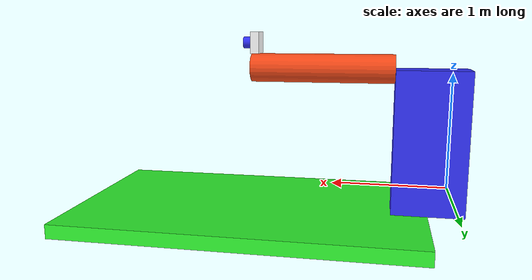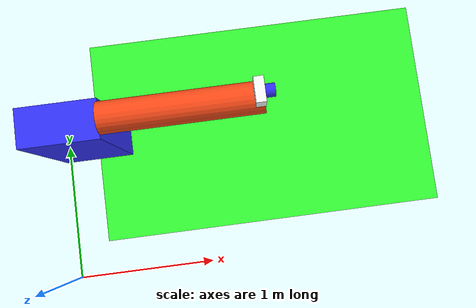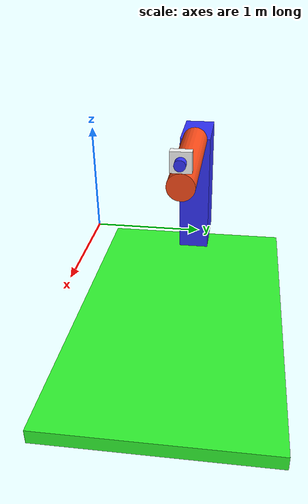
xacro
<?xml version="1.0"?>
<robot xmlns:xacro="http://www.ros.org/wiki/xacro"  name="robot">

    <xacro:include filename="example_include_assignment_aloukeri.xacro" />

    <link name="world"></link>

    <joint name="base_joint" type="fixed">
        <origin xyz="1.5 1.0 0" rpy="0 0 0"/>
        <parent link="world"/>
        <child link="base_link"/>
    </joint>

    <link name="base_link">
        <visual>
            <origin xyz="0 0 0.05" rpy="0 0 0"/>
            <geometry>
                <box size="2.5 1.5 0.1" />
            </geometry>
            <material name="green">
                <color rgba="0.2 1 0.2 1"/>
            </material>
        </visual>
        <collision>
            <origin xyz="0 0 0.05" rpy="0 0 0"/>
            <geometry>
                <box size="2.5 1.5 0.1" />
            </geometry>
        </collision>
        <inertial>
            <origin xyz="0 0 0.05" rpy="0 0 0"/>
            <mass value="12" />
            <inertia ixx="2.26" ixy="0.0" ixz="0.0" iyy="6.26" iyz="0.0" izz="8.5" />
        </inertial>
    </link>

    <link name="slider_x_link">
        <inertial>
            <origin xyz="0 0 0" rpy="0 0 0"/>
            <mass value="0.01"/>
            <inertia ixx="0.001" ixy="0" ixz="0" iyy="0.001" iyz="0" izz="0.001"/>
        </inertial>
    </link>

    <joint name="slider_x_joint" type="prismatic">
        <origin xyz="-1.25 0 0.1" rpy="0 0 0"/>
        <parent link="base_link"/>
        <child link="slider_x_link"/>
        <axis xyz="1 0 0"/>
        <limit lower="0" upper="2" velocity="100" effort="100"/>
    </joint>

    <joint name="slider_y_joint" type="prismatic">
        <origin xyz="0 0 0" rpy="0 0 0"/>
        <parent link="slider_x_link"/>
        <child link="slider_link"/>
        <axis xyz="0 1 0"/>
        <limit lower="-0.6" upper="0.6" velocity="100" effort="100"/>
    </joint>

    <link name="slider_link">
        <visual>
            <origin xyz="0 0 0.5" rpy="0 0 0"/>
            <geometry>
                <box size="0.5 0.25 1.0" />
            </geometry>
            <material name="blue" />
        </visual>
        <collision>
            <origin xyz="0 0 0.5" rpy="0 0 0"/>
            <geometry>
                <box size="0.5 0.25 1.0" />
            </geometry>
        </collision>
        <xacro:inertial_box mass="0.5" x="0.5" y="0.25" z="1.0">
            <origin xyz="0 0 0.5" rpy="0 0 0"/>
        </xacro:inertial_box>
    </link>

    <joint name="arm_joint" type="revolute">
        <origin xyz="0.25 0 1.0" rpy="0 0 0"/>
        <parent link="slider_link"/>
        <child link="arm_link"/>
        <axis xyz="0 -1 0"/>
        <limit lower="-${pi/2}" upper="0" velocity="100" effort="100"/>
    </joint>

    <xacro:property name="arm_length" value="1" />
    <xacro:property name="arm_radius" value="0.1" />

    <link name="arm_link">
        <visual>
            <origin xyz="${arm_length/2} 0 0" rpy="0 ${pi/2} 0"/>
            <geometry>
                <cylinder length="${arm_length}" radius="${arm_radius}" />
            </geometry>
            <material name="orange" />
        </visual>
        <collision>
            <origin xyz="${arm_length/2} 0 0" rpy="0 ${pi/2} 0"/>
            <geometry>
                <cylinder length="${arm_length}" radius="${arm_radius}" />
            </geometry>
        </collision>
        <xacro:inertial_cylinder mass="1.0" length="${arm_length}" radius="${arm_radius}">
            <origin xyz="${arm_length/2} 0 0" rpy="0 ${pi/2} 0"/>
        </xacro:inertial_cylinder>
    </link>

    <joint name="camera_joint" type="fixed">
        <origin xyz="${arm_length} 0 ${arm_radius + 0.075}" rpy="0 0 0"/>
        <parent link="arm_link"/>
        <child link="camera_link"/>
    </joint>

    <link name="camera_link">
        <visual>
            <origin xyz="-0.03 0 0" rpy="0 0 0"/>
            <geometry>
                <box size="0.06 0.15 0.15" />
            </geometry>
            <material name="white" />
        </visual>
        <visual>
            <origin xyz="0.03 0 0" rpy="0 ${pi/2} 0"/>
            <geometry>
                <cylinder length="0.06" radius="0.04" />
            </geometry>
            <material name="blue" />
        </visual>
        <collision>
            <origin xyz="0.0 0 0" rpy="0 0 0"/>
            <geometry>
                <box size="0.12 0.15 0.15" />
            </geometry>
        </collision>
        <xacro:inertial_box mass="0.1" x="0.12" y="0.15" z="0.15">
            <origin xyz="0.0 0 0" rpy="0 0 0"/>
        </xacro:inertial_box>
    </link>

</robot>

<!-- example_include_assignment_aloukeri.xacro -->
<robot xmlns:xacro="http://www.ros.org/wiki/xacro" >

    <material name="white">
        <color rgba="1 1 1 1"/>
    </material>

    <material name="orange">
        <color rgba="1 0.3 0.1 1"/>
    </material>

    <material name="blue">
        <color rgba="0.2 0.2 1 1"/>
    </material>

    <xacro:macro name="inertial_sphere" params="mass radius *origin">
        <inertial>
            <xacro:insert_block name="origin"/>
            <mass value="${mass}" />
            <inertia ixx="${(2/5) * mass * (radius*radius)}" ixy="0.0" ixz="0.0"
                    iyy="${(2/5) * mass * (radius*radius)}" iyz="0.0"
                    izz="${(2/5) * mass * (radius*radius)}" />
        </inertial>
    </xacro:macro>

    <xacro:macro name="inertial_box" params="mass x y z *origin">
        <inertial>
            <xacro:insert_block name="origin"/>
            <mass value="${mass}" />
            <inertia ixx="${(1/12) * mass * (y*y+z*z)}" ixy="0.0" ixz="0.0"
                    iyy="${(1/12) * mass * (x*x+z*z)}" iyz="0.0"
                    izz="${(1/12) * mass * (x*x+y*y)}" />
        </inertial>
    </xacro:macro>

    <xacro:macro name="inertial_cylinder" params="mass length radius *origin">
        <inertial>
            <xacro:insert_block name="origin"/>
            <mass value="${mass}" />
            <inertia ixx="${(1/12) * mass * (3*radius*radius + length*length)}" ixy="0.0" ixz="0.0"
                    iyy="${(1/12) * mass * (3*radius*radius + length*length)}" iyz="0.0"
                    izz="${(1/2) * mass * (radius*radius)}" />
        </inertial>
    </xacro:macro>

</robot>
